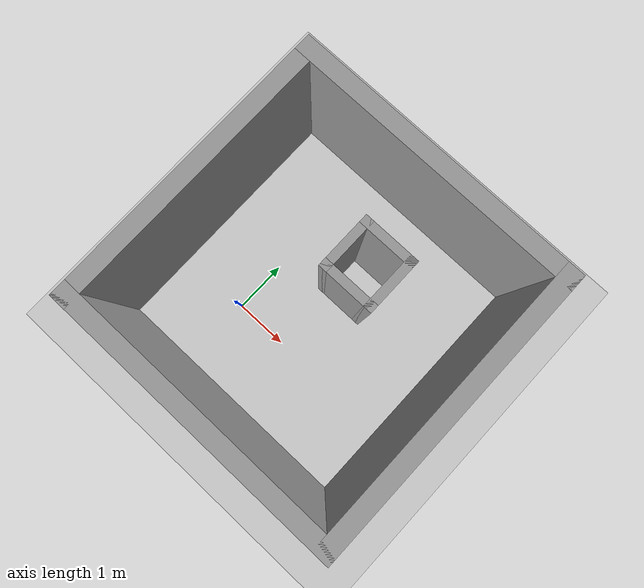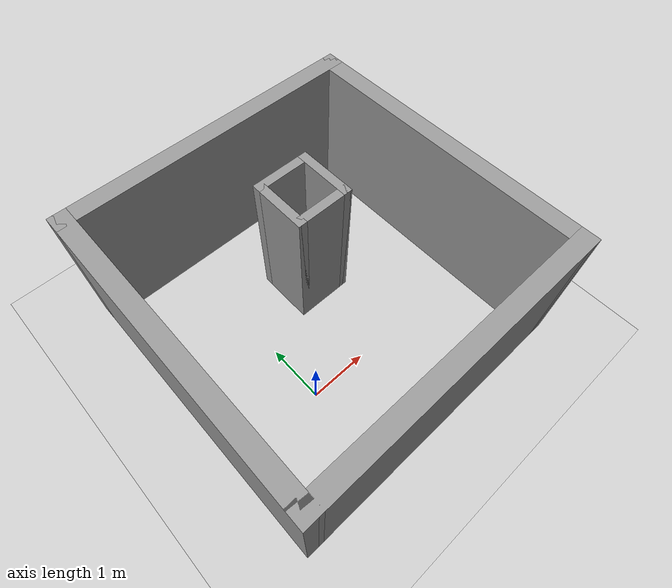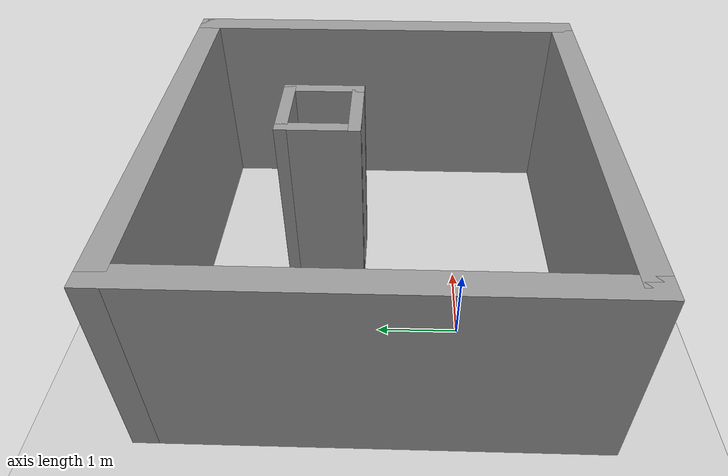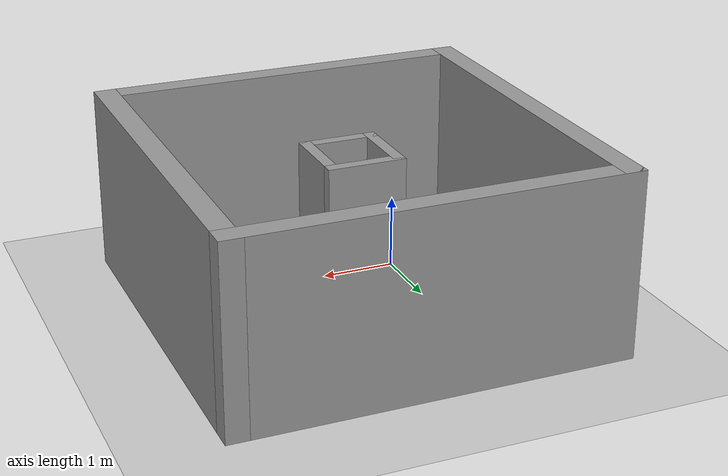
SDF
<sdf version="1.7">
 <world name="default">
  <light name="sun" type="directional">
   <pose>0 0 10 0 -0 0</pose>
   <diffuse>0.8 0.8 0.8 1</diffuse>
   <specular>0.2 0.2 0.2 1</specular>
   <attenuation>
    <range>1000</range>
    <constant>0.9</constant>
    <linear>0.01</linear>
    <quadratic>0.001</quadratic>
   </attenuation>
   <direction>-0.5 0.1 -0.9</direction>
   <spot><inner_angle>0</inner_angle><outer_angle>0</outer_angle><falloff>0</falloff></spot>
  </light>
  <model name="ground_plane">
   <static>1</static>
   <link name="link">
    <collision name="collision">
     <geometry><plane><normal>0 0 1</normal><size>100 100</size></plane></geometry>
     <surface>
      <contact><collide_bitmask>65535</collide_bitmask></contact>
      <friction><ode><mu>100</mu><mu2>50</mu2></ode></friction>
     </surface>
    </collision>
    <visual name="visual">
     <cast_shadows>0</cast_shadows>
     <geometry><plane><normal>0 0 1</normal><size>100 100</size></plane></geometry>
     <material>
      <script><uri>file://media/materials/scripts/gazebo.material</uri><name>Gazebo/Grey</name></script>
     </material>
    </visual>
   </link>
  </model>
  <gravity>0 0 -9.8</gravity>
  <magnetic_field>6e-06 2.3e-05 -4.2e-05</magnetic_field>
  <atmosphere type="adiabatic"/>
  <physics type="ode">
   <max_step_size>0.001</max_step_size>
   <real_time_factor>1</real_time_factor>
   <real_time_update_rate>1000</real_time_update_rate>
  </physics>
  <scene><ambient>0.4 0.4 0.4 1</ambient><background>0.7 0.7 0.7 1</background><shadows>1</shadows></scene>
  <spherical_coordinates>
   <surface_model>EARTH_WGS84</surface_model>
   <latitude_deg>0</latitude_deg>
   <longitude_deg>0</longitude_deg>
   <elevation>0</elevation>
   <heading_deg>0</heading_deg>
  </spherical_coordinates>
  <model name="Untitled">
   <pose>1 1 0 0 -0 0</pose>
   <link name="Wall_15">
    <collision name="Wall_15_Collision">
     <geometry><box><size>5.3 0.3 2.5</size></box></geometry>
     <pose>0 0 1.25 0 -0 0</pose>
    </collision>
    <visual name="Wall_15_Visual">
     <pose>0 0 1.25 0 -0 0</pose>
     <geometry><box><size>5.3 0.3 2.5</size></box></geometry>
     <material>
      <script><uri>file://media/materials/scripts/gazebo.material</uri><name>Gazebo/Grey</name></script>
      <ambient>1 1 1 1</ambient>
     </material>
     <meta><layer>0</layer></meta>
    </visual>
    <pose>0 -2.5 0 0 -0 0</pose>
   </link>
   <link name="Wall_17">
    <collision name="Wall_17_Collision">
     <geometry><box><size>5.3 0.3 2.5</size></box></geometry>
     <pose>0 0 1.25 0 -0 0</pose>
    </collision>
    <visual name="Wall_17_Visual">
     <pose>0 0 1.25 0 -0 0</pose>
     <geometry><box><size>5.3 0.3 2.5</size></box></geometry>
     <material>
      <script><uri>file://media/materials/scripts/gazebo.material</uri><name>Gazebo/Grey</name></script>
      <ambient>1 1 1 1</ambient>
     </material>
     <meta><layer>0</layer></meta>
    </visual>
    <pose>2.5 0 0 0 -0 1.5708</pose>
   </link>
   <link name="Wall_20">
    <collision name="Wall_20_Collision">
     <geometry><box><size>5.3 0.3 2.5</size></box></geometry>
     <pose>0 0 1.25 0 -0 0</pose>
    </collision>
    <visual name="Wall_20_Visual">
     <pose>0 0 1.25 0 -0 0</pose>
     <geometry><box><size>5.3 0.3 2.5</size></box></geometry>
     <material>
      <script><uri>file://media/materials/scripts/gazebo.material</uri><name>Gazebo/Grey</name></script>
      <ambient>1 1 1 1</ambient>
     </material>
     <meta><layer>0</layer></meta>
    </visual>
    <pose>0 2.5 0 0 -0 3.14159</pose>
   </link>
   <link name="Wall_22">
    <collision name="Wall_22_Collision">
     <geometry><box><size>5.3 0.3 2.5</size></box></geometry>
     <pose>0 0 1.25 0 -0 0</pose>
    </collision>
    <visual name="Wall_22_Visual">
     <pose>0 0 1.25 0 -0 0</pose>
     <geometry><box><size>5.3 0.3 2.5</size></box></geometry>
     <material>
      <script><uri>file://media/materials/scripts/gazebo.material</uri><name>Gazebo/Grey</name></script>
      <ambient>1 1 1 1</ambient>
     </material>
     <meta><layer>0</layer></meta>
    </visual>
    <pose>-2.5 0 0 0 -0 -1.5708</pose>
   </link>
   <link name="Wall_29">
    <collision name="Wall_29_Collision">
     <geometry><box><size>1 0.15 2.5</size></box></geometry>
     <pose>0 0 1.25 0 -0 0</pose>
    </collision>
    <visual name="Wall_29_Visual">
     <pose>0 0 1.25 0 -0 0</pose>
     <geometry><box><size>1 0.15 2.5</size></box></geometry>
     <material>
      <script><uri>file://media/materials/scripts/gazebo.material</uri><name>Gazebo/Grey</name></script>
      <ambient>1 1 1 1</ambient>
     </material>
     <meta><layer>0</layer></meta>
    </visual>
    <pose>0.309771 0.289126 0 0 -0 0</pose>
   </link>
   <link name="Wall_30">
    <collision name="Wall_30_Collision">
     <geometry><box><size>1 0.15 2.5</size></box></geometry>
     <pose>0 0 1.25 0 -0 0</pose>
    </collision>
    <visual name="Wall_30_Visual">
     <pose>0 0 1.25 0 -0 0</pose>
     <geometry><box><size>1 0.15 2.5</size></box></geometry>
     <material>
      <script><uri>file://media/materials/scripts/gazebo.material</uri><name>Gazebo/Grey</name></script>
      <ambient>1 1 1 1</ambient>
     </material>
     <meta><layer>0</layer></meta>
    </visual>
    <pose>0.734771 0.714126 0 0 -0 1.5708</pose>
   </link>
   <link name="Wall_31">
    <collision name="Wall_31_Collision">
     <geometry><box><size>1 0.15 2.5</size></box></geometry>
     <pose>0 0 1.25 0 -0 0</pose>
    </collision>
    <visual name="Wall_31_Visual">
     <pose>0 0 1.25 0 -0 0</pose>
     <geometry><box><size>1 0.15 2.5</size></box></geometry>
     <material>
      <script><uri>file://media/materials/scripts/gazebo.material</uri><name>Gazebo/Grey</name></script>
      <ambient>1 1 1 1</ambient>
     </material>
     <meta><layer>0</layer></meta>
    </visual>
    <pose>0.309771 1.13913 0 0 -0 3.14159</pose>
   </link>
   <link name="Wall_32">
    <collision name="Wall_32_Collision">
     <geometry><box><size>1 0.15 2.5</size></box></geometry>
     <pose>0 0 1.25 0 -0 0</pose>
    </collision>
    <visual name="Wall_32_Visual">
     <pose>0 0 1.25 0 -0 0</pose>
     <geometry><box><size>1 0.15 2.5</size></box></geometry>
     <material>
      <script><uri>file://media/materials/scripts/gazebo.material</uri><name>Gazebo/Grey</name></script>
      <ambient>1 1 1 1</ambient>
     </material>
     <meta><layer>0</layer></meta>
    </visual>
    <pose>-0.115229 0.714126 0 0 -0 -1.5708</pose>
   </link>
   <static>1</static>
  </model>
 </world>
</sdf>
